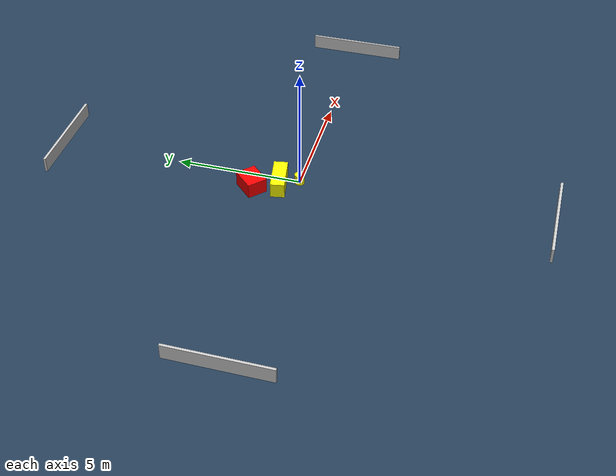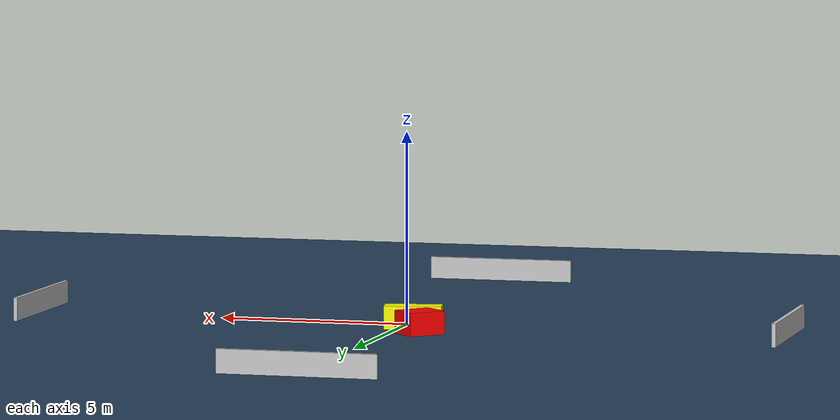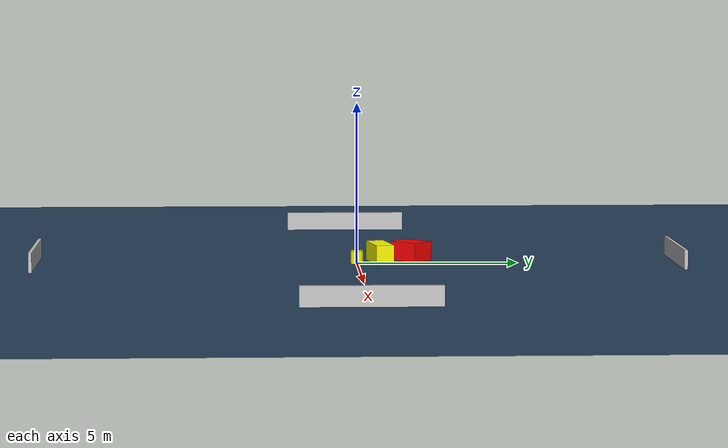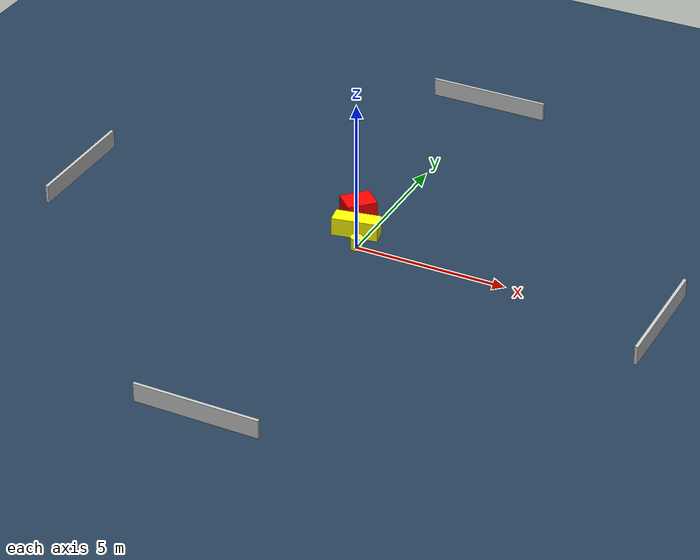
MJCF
<?xml version="1.0" ?>
<mujoco model="generated_environment">
  <option timestep="0.01" integrator="RK4" cone="elliptic"/>
  <default>
    <geom density="1"/>
  </default>
  <asset>
    <texture builtin="gradient" height="3072" name="skybox" rgb1="0.3 0.5 0.7" rgb2="0 0 0" type="skybox" width="512"/>
    <texture builtin="checker" height="300" name="groundplane" rgb1="0.2 0.3 0.4" rgb2="0.1 0.2 0.3" type="2d" width="300"/>
    <material name="groundplane" reflectance="0.2" texrepeat="5 5" texture="groundplane"/>
  </asset>
  <worldbody>
    <light dir="0 0 -1" directional="true" pos="0 0 1.5"/>
    <geom condim="3" friction="0.5 0.005 0.001" material="groundplane" name="floor" pos="0 0 0" size="0 0 0.05" type="plane"/>
    <body name="walls">
      <geom name="wall_1" condim="4" pos="-10.0 0.0 0.3" rgba="0.800000011920929 0.800000011920929 0.800000011920929 1.0" size="0.05 2.0 0.3" type="box"/>
      <geom name="wall_2" condim="4" pos="10.0 0.0 0.3" rgba="0.800000011920929 0.800000011920929 0.800000011920929 1.0" size="0.05 2.0 0.3" type="box"/>
      <geom name="wall_3" condim="4" pos="0.0 -10.0 0.3" rgba="0.800000011920929 0.800000011920929 0.800000011920929 1.0" size="2.0 0.05 0.3" type="box"/>
      <geom name="wall_4" condim="4" pos="0.0 10.0 0.3" rgba="0.800000011920929 0.800000011920929 0.800000011920929 1.0" size="2.0 0.05 0.3" type="box"/>
    </body>
    <body name="robot">
      <joint name="joint_x" type="slide" pos="0 0 0" axis="1 0 0"/>
      <joint name="joint_y" type="slide" pos="0 0 0" axis="0 1 0"/>
      <geom name="robot" type="cylinder" pos="0.0 0.0 0.2" size="0.2 0.2 0.0" mass="5.0" friction="1.0 0.005 0.0001" condim="4" rgba="1.0 1.0 0.0 1.0"/>
    </body>
    <body name="obstacle_1_movable">
      <geom name="obstacle_1_movable" condim="4" pos="-0.37008615962663616 0.7366128152505154 0.3" euler="0 0 10.28820506695331" friction="0.0 0.005 0.001" rgba="1.0 1.0 0.0 1.0" size="0.7408391977097442 0.2805860283811186 0.3" type="box" mass="0.1"/>
      <joint type="free"/>
    </body>
    <body name="obstacle_2_static">
      <geom name="obstacle_2_static" condim="4" pos="-0.8070624778080405 1.7384903644953997 0.3" euler="0 0 225.88595137101228" friction="0.0 0.005 0.001" rgba="1.0 0.0 0.0 1.0" size="0.4985052523966288 0.40385116282673283 0.3" type="box"/>
    </body>
  </worldbody>
  <actuator>
    <motor name="actuator_x" joint="joint_x" gear="1" ctrlrange="-1 1"/>
    <motor name="actuator_y" joint="joint_y" gear="1" ctrlrange="-1 1"/>
  </actuator>
</mujoco>
